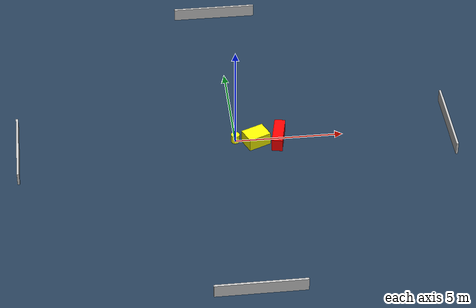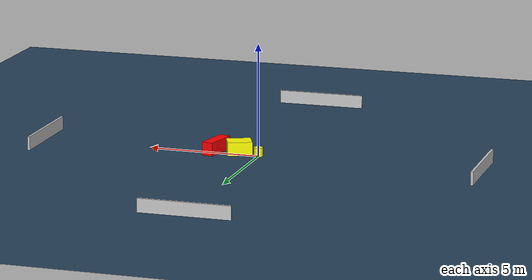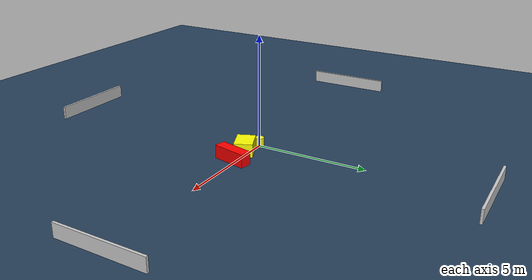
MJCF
<?xml version="1.0" ?>
<mujoco model="generated_environment">
  <option timestep="0.01" integrator="RK4" cone="elliptic"/>
  <default>
    <geom density="1"/>
  </default>
  <asset>
    <texture builtin="gradient" height="3072" name="skybox" rgb1="0.3 0.5 0.7" rgb2="0 0 0" type="skybox" width="512"/>
    <texture builtin="checker" height="300" name="groundplane" rgb1="0.2 0.3 0.4" rgb2="0.1 0.2 0.3" type="2d" width="300"/>
    <material name="groundplane" reflectance="0.2" texrepeat="5 5" texture="groundplane"/>
  </asset>
  <worldbody>
    <light dir="0 0 -1" directional="true" pos="0 0 1.5"/>
    <geom condim="3" friction="0.5 0.005 0.001" material="groundplane" name="floor" pos="0 0 0" size="0 0 0.05" type="plane"/>
    <body name="walls">
      <geom name="wall_1" condim="4" pos="-10.0 0.0 0.3" rgba="0.800000011920929 0.800000011920929 0.800000011920929 1.0" size="0.05 2.0 0.3" type="box"/>
      <geom name="wall_2" condim="4" pos="10.0 0.0 0.3" rgba="0.800000011920929 0.800000011920929 0.800000011920929 1.0" size="0.05 2.0 0.3" type="box"/>
      <geom name="wall_3" condim="4" pos="0.0 -10.0 0.3" rgba="0.800000011920929 0.800000011920929 0.800000011920929 1.0" size="2.0 0.05 0.3" type="box"/>
      <geom name="wall_4" condim="4" pos="0.0 10.0 0.3" rgba="0.800000011920929 0.800000011920929 0.800000011920929 1.0" size="2.0 0.05 0.3" type="box"/>
    </body>
    <body name="robot">
      <joint name="joint_x" type="slide" pos="0 0 0" axis="1 0 0"/>
      <joint name="joint_y" type="slide" pos="0 0 0" axis="0 1 0"/>
      <geom name="robot" type="cylinder" pos="0.0 0.0 0.2" size="0.2 0.2 0.0" mass="5.0" friction="1.0 0.005 0.0001" condim="4" rgba="1.0 1.0 0.0 1.0"/>
    </body>
    <body name="obstacle_1_movable">
      <geom name="obstacle_1_movable" condim="4" pos="0.9395356962370289 -0.18564465807821204 0.3" euler="0 0 293.0283854492232" friction="0.0 0.005 0.001" rgba="1.0 1.0 0.0 1.0" size="0.40758183816155047 0.5426228642108548 0.3" type="box" mass="0.1"/>
      <joint type="free"/>
    </body>
    <body name="obstacle_2_static">
      <geom name="obstacle_2_static" condim="4" pos="1.9903471451062278 -0.14386368879641737 0.3" euler="0 0 257.6720612050478" friction="0.0 0.005 0.001" rgba="1.0 0.0 0.0 1.0" size="0.7682052196925322 0.250883353062437 0.3" type="box"/>
    </body>
  </worldbody>
  <actuator>
    <motor name="actuator_x" joint="joint_x" gear="1" ctrlrange="-1 1"/>
    <motor name="actuator_y" joint="joint_y" gear="1" ctrlrange="-1 1"/>
  </actuator>
</mujoco>
